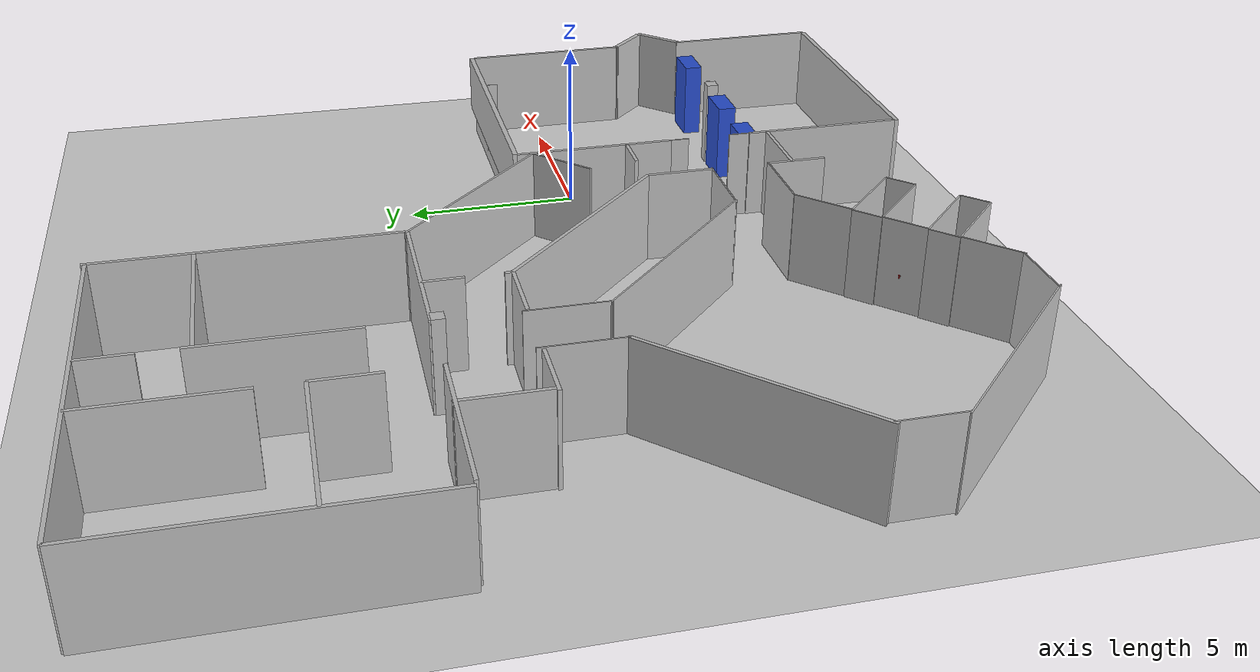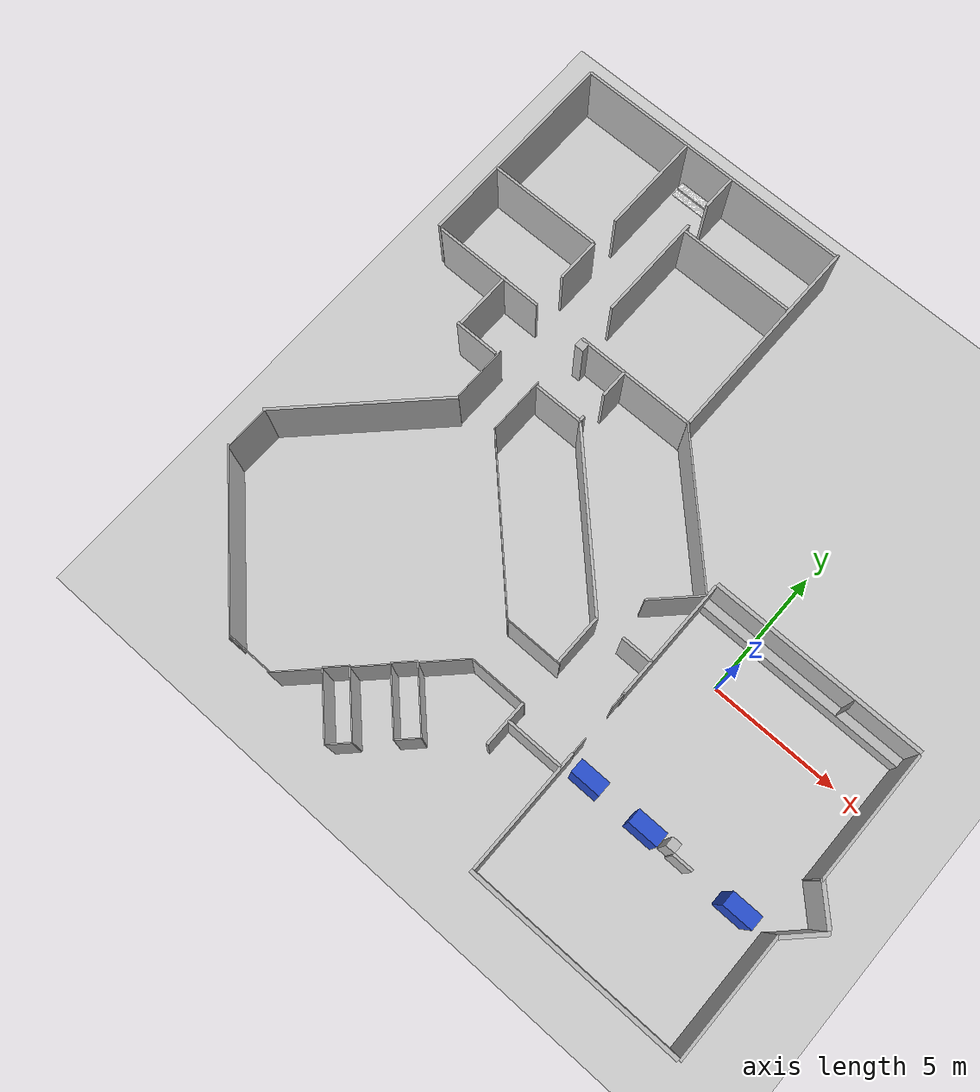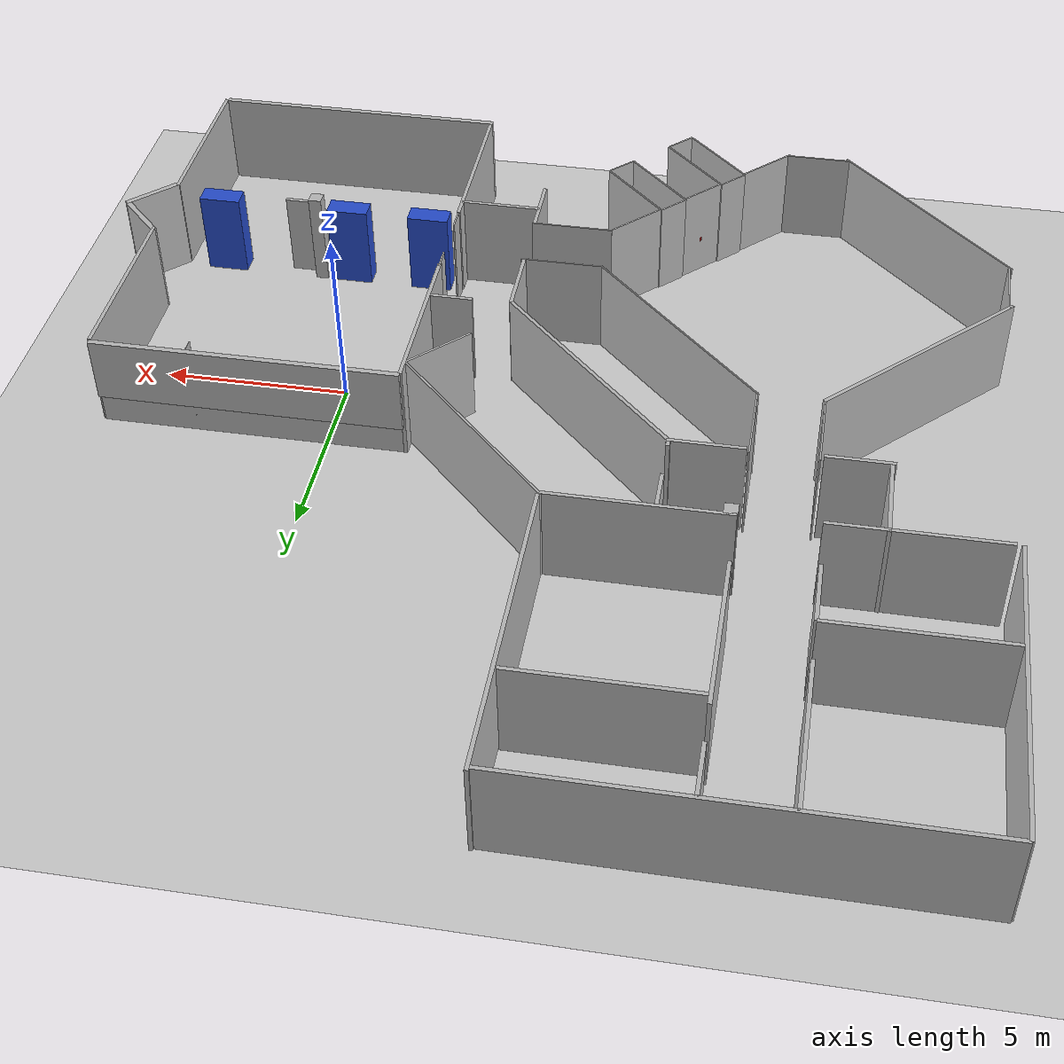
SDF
<sdf version="1.6">
 <world name="default">
  <light name="sun" type="directional">
   <pose>0 0 10 0 -0 0</pose>
   <diffuse>0.8 0.8 0.8 1</diffuse>
   <specular>0.2 0.2 0.2 1</specular>
   <attenuation>
    <range>1000</range>
    <constant>0.9</constant>
    <linear>0.01</linear>
    <quadratic>0.001</quadratic>
   </attenuation>
   <direction>-0.5 0.1 -0.9</direction>
  </light>
  <model name="ground_plane">
   <static>1</static>
   <link name="link">
    <collision name="collision">
     <geometry><plane><normal>0 0 1</normal><size>100 100</size></plane></geometry>
     <surface>
      <contact><collide_bitmask>65535</collide_bitmask></contact>
      <friction><ode><mu>100</mu><mu2>50</mu2></ode></friction>
     </surface>
    </collision>
    <visual name="visual">
     <cast_shadows>0</cast_shadows>
     <geometry><plane><normal>0 0 1</normal><size>100 100</size></plane></geometry>
     <material>
      <script><uri>file://media/materials/scripts/gazebo.material</uri><name>Gazebo/Grey</name></script>
     </material>
    </visual>
   </link>
  </model>
  <gravity>0 0 -9.8</gravity>
  <magnetic_field>6e-06 2.3e-05 -4.2e-05</magnetic_field>
  <atmosphere type="adiabatic"/>
  <physics name="default_physics" default="0" type="ode">
   <max_step_size>0.001</max_step_size>
   <real_time_factor>1</real_time_factor>
   <real_time_update_rate>1000</real_time_update_rate>
  </physics>
  <scene><ambient>0.4 0.4 0.4 1</ambient><background>0.7 0.7 0.7 1</background><shadows>1</shadows></scene>
  <audio><device>default</device></audio>
  <spherical_coordinates>
   <surface_model>EARTH_WGS84</surface_model>
   <latitude_deg>0</latitude_deg>
   <longitude_deg>0</longitude_deg>
   <elevation>0</elevation>
   <heading_deg>0</heading_deg>
  </spherical_coordinates>
  <model name="ipa-apartment">
   <link name="cabinet1">
    <pose>4.844 -5.245 1.2 0 -0 0</pose>
    <inertial>
     <mass>5</mass>
     <inertia><ixx>2.52604</ixx><ixy>0</ixy><ixz>0</ixz><iyy>2.95104</iyy><iyz>0</iyz><izz>0.677083</izz></inertia>
    </inertial>
    <collision name="cabinet1_collision"><geometry><box><size>1.15 0.55 2.4</size></box></geometry></collision>
    <visual name="cabinet1_visual">
     <geometry><box><size>1.15 0.55 2.4</size></box></geometry>
     <material>
      <script><name>IPA/CabinetBlue</name><uri>file://media/materials/scripts/gazebo.material</uri></script>
     </material>
    </visual>
   </link>
   <joint name="joint_cabinet1" type="fixed"><child>cabinet1</child><parent>world</parent></joint>
   <link name="cabinet2">
    <pose>1.104 -5.245 1.2 0 -0 0</pose>
    <inertial>
     <mass>5</mass>
     <inertia><ixx>2.52604</ixx><ixy>0</ixy><ixz>0</ixz><iyy>2.95104</iyy><iyz>0</iyz><izz>0.677083</izz></inertia>
    </inertial>
    <collision name="cabinet2_collision"><geometry><box><size>1.15 0.55 2.4</size></box></geometry></collision>
    <visual name="cabinet2_visual">
     <geometry><box><size>1.15 0.55 2.4</size></box></geometry>
     <material>
      <script><name>IPA/CabinetBlue</name><uri>file://media/materials/scripts/gazebo.material</uri></script>
     </material>
    </visual>
   </link>
   <joint name="joint_cabinet2" type="fixed"><child>cabinet2</child><parent>world</parent></joint>
   <link name="cabinet3">
    <pose>-1.236 -5.245 1.2 0 -0 0</pose>
    <inertial>
     <mass>5</mass>
     <inertia><ixx>2.52604</ixx><ixy>0</ixy><ixz>0</ixz><iyy>2.95104</iyy><iyz>0</iyz><izz>0.677083</izz></inertia>
    </inertial>
    <collision name="cabinet3_collision"><geometry><box><size>1.15 0.55 2.4</size></box></geometry></collision>
    <visual name="cabinet3_visual">
     <geometry><box><size>1.15 0.55 2.4</size></box></geometry>
     <material>
      <script><name>IPA/CabinetBlue</name><uri>file://media/materials/scripts/gazebo.material</uri></script>
     </material>
    </visual>
   </link>
   <joint name="joint_cabinet3" type="fixed"><child>cabinet3</child><parent>world</parent></joint>
   <link name="column">
    <pose>2.009 -5.15 1.35 0 -0 0</pose>
    <inertial>
     <mass>5</mass>
     <inertia><ixx>3.0915</ixx><ixy>0</ixy><ixz>0</ixz><iyy>3.0915</iyy><iyz>0</iyz><izz>0.108</izz></inertia>
    </inertial>
    <collision name="column_collision"><geometry><box><size>0.36 0.36 2.7</size></box></geometry></collision>
    <visual name="column_visual">
     <geometry><box><size>0.36 0.36 2.7</size></box></geometry>
     <material>
      <script><name>IPA/WallApartment</name><uri>file://media/materials/scripts/gazebo.material</uri></script>
     </material>
    </visual>
   </link>
   <joint name="joint_column" type="fixed"><child>column</child><parent>world</parent></joint>
   <link name="door_00">
    <pose>-2.131 -2.85 1.35 0 -0 0</pose>
    <inertial>
     <mass>5</mass>
     <inertia><ixx>3.19767</ixx><ixy>0</ixy><ixz>0</ixz><iyy>3.03817</iyy><iyz>0</iyz><izz>0.160833</izz></inertia>
    </inertial>
    <collision name="door_00_collision"><geometry><box><size>0.04 0.62 2.7</size></box></geometry></collision>
    <visual name="door_00_visual">
     <geometry><box><size>0.04 0.62 2.7</size></box></geometry>
     <material>
      <script><name>IPA/Wall2</name><uri>file://media/materials/scripts/gazebo.material</uri></script>
     </material>
    </visual>
   </link>
   <joint name="joint_door_00" type="fixed"><child>door_00</child><parent>world</parent></joint>
   <link name="door_01">
    <pose>-2.131 -4.75 1.35 0 -0 0</pose>
    <inertial>
     <mass>5</mass>
     <inertia><ixx>3.19767</ixx><ixy>0</ixy><ixz>0</ixz><iyy>3.03817</iyy><iyz>0</iyz><izz>0.160833</izz></inertia>
    </inertial>
    <collision name="door_01_collision"><geometry><box><size>0.04 0.62 2.7</size></box></geometry></collision>
    <visual name="door_01_visual">
     <geometry><box><size>0.04 0.62 2.7</size></box></geometry>
     <material>
      <script><name>IPA/Wall2</name><uri>file://media/materials/scripts/gazebo.material</uri></script>
     </material>
    </visual>
   </link>
   <joint name="joint_door_01" type="fixed"><child>door_01</child><parent>world</parent></joint>
   <link name="origin_landing">
    <pose>-11.931 -4.07 0 0 -0 0</pose>
    <inertial>
     <pose>2.29172 5.0105 1.32685 0 -0 0</pose>
     <mass>215.03</mass>
     <inertia>
      <ixx>11620.1</ixx>
      <ixy>2165.63</ixy>
      <ixz>-11.4059</ixz>
      <iyy>3555.04</iyy>
      <iyz>62.6193</iyz>
      <izz>14910.3</izz>
     </inertia>
    </inertial>
    <collision name="origin_landing_fixed_joint_lump__door_E334_collision">
     <pose>8.7 -1.565 1.35 0 -0 0</pose>
     <geometry><box><size>2.2 0.1 2.7</size></box></geometry>
    </collision>
    <collision name="origin_landing_fixed_joint_lump__elevator_left2_collision_1">
     <pose>5.61427 -4.07985 1.35 0 0 -0.785398</pose>
     <geometry><box><size>0.04 0.87 2.7</size></box></geometry>
    </collision>
    <collision name="origin_landing_fixed_joint_lump__elevator_right2_collision_2">
     <pose>4.07985 -5.61427 1.35 0 0 -0.785398</pose>
     <geometry><box><size>0.04 0.87 2.7</size></box></geometry>
    </collision>
    <collision name="origin_landing_fixed_joint_lump__wall_elv5_collision_3">
     <pose>5.07333 -2.92373 1.35 0 0 -0.785398</pose>
     <geometry><box><size>2.4 0.04 2.7</size></box></geometry>
    </collision>
    <collision name="origin_landing_fixed_joint_lump__wall_elv6_collision_4">
     <pose>4.45815 -3.53891 1.35 0 0 -0.785398</pose>
     <geometry><box><size>2.4 0.04 2.7</size></box></geometry>
    </collision>
    <collision name="origin_landing_fixed_joint_lump__wall_elv7_collision_5">
     <pose>3.53891 -4.45815 1.35 0 0 -0.785398</pose>
     <geometry><box><size>2.4 0.04 2.7</size></box></geometry>
    </collision>
    <collision name="origin_landing_fixed_joint_lump__wall_elv8_collision_6">
     <pose>2.92373 -5.07333 1.35 0 0 -0.785398</pose>
     <geometry><box><size>2.4 0.04 2.7</size></box></geometry>
    </collision>
    <collision name="origin_landing_fixed_joint_lump__wall_ext18_collision_7">
     <pose>4.83999 -1.46001 1.35 0 0 -0.785398</pose>
     <geometry><box><size>0.04 1.74 2.7</size></box></geometry>
    </collision>
    <collision name="origin_landing_fixed_joint_lump__wall_ext19_collision_8">
     <pose>1.46001 -4.83999 1.35 0 0 -0.785398</pose>
     <geometry><box><size>0.04 1.74 2.7</size></box></geometry>
    </collision>
    <collision name="origin_landing_fixed_joint_lump__wall_ext20_collision_9">
     <pose>3.15 -3.15 1.35 0 0 -0.785398</pose>
     <geometry><box><size>0.04 1.3 2.7</size></box></geometry>
    </collision>
    <collision name="origin_landing_fixed_joint_lump__boards_before_bedroom_link_collision_10">
     <pose>0 17.65 0.36 0 -0 0</pose>
     <geometry><box><size>1.8 0.55 0.22</size></box></geometry>
    </collision>
    <collision name="origin_landing_fixed_joint_lump__wall_office_00_collision_11">
     <pose>3.25 9.85 1.35 0 -0 0</pose>
     <geometry><box><size>4.65 0.1 2.7</size></box></geometry>
    </collision>
    <collision name="origin_landing_fixed_joint_lump__wall_office_01_collision_12">
     <pose>-3.25 9.78 1.35 0 -0 0</pose>
     <geometry><box><size>4.4 0.1 2.7</size></box></geometry>
    </collision>
    <collision name="origin_landing_fixed_joint_lump__wall_office_02_collision_13">
     <pose>5.6 14 1.35 0 -0 0</pose>
     <geometry><box><size>0.1 8.2 2.7</size></box></geometry>
    </collision>
    <collision name="origin_landing_fixed_joint_lump__wall_office_03_collision_14">
     <pose>-5.6 13.9 1.35 0 -0 0</pose>
     <geometry><box><size>0.1 8.2 2.7</size></box></geometry>
    </collision>
    <collision name="origin_landing_fixed_joint_lump__wall_office_04_collision_15">
     <pose>0 18 1.35 0 -0 0</pose>
     <geometry><box><size>11.2 0.1 2.7</size></box></geometry>
    </collision>
    <collision name="origin_landing_fixed_joint_lump__wall_office_05_collision_16">
     <pose>0.95 13.48 1.35 0 -0 0</pose>
     <geometry><box><size>0.1 4.21 2.7</size></box></geometry>
    </collision>
    <collision name="origin_landing_fixed_joint_lump__wall_office_06_collision_17">
     <pose>0.95 17.28 1.35 0 -0 0</pose>
     <geometry><box><size>0.1 1.4 2.7</size></box></geometry>
    </collision>
    <collision name="origin_landing_fixed_joint_lump__wall_office_07_collision_18">
     <pose>-1.09 16 1.35 0 -0 0</pose>
     <geometry><box><size>0.1 4.01 2.7</size></box></geometry>
    </collision>
    <collision name="origin_landing_fixed_joint_lump__wall_office_08_collision_19">
     <pose>-1.09 12 1.35 0 -0 0</pose>
     <geometry><box><size>0.1 1.73 2.7</size></box></geometry>
    </collision>
    <collision name="origin_landing_fixed_joint_lump__wall_office_09_collision_20">
     <pose>3.26 15.32 1.35 0 -0 0</pose>
     <geometry><box><size>4.53 0.1 2.7</size></box></geometry>
    </collision>
    <collision name="origin_landing_fixed_joint_lump__wall_office_10_collision_21">
     <pose>-3.35 12.86 1.35 0 -0 0</pose>
     <geometry><box><size>4.5 0.1 2.7</size></box></geometry>
    </collision>
    <collision name="origin_landing_fixed_joint_lump__pillar_ext01_collision_22">
     <pose>1.08 9.675 1.35 0 -0 0</pose>
     <geometry><box><size>0.35 0.35 2.7</size></box></geometry>
    </collision>
    <collision name="origin_landing_fixed_joint_lump__wall_ext10_collision_23">
     <pose>1.89 7.53 1.35 0 -0 0</pose>
     <geometry><box><size>1.96 0.1 2.7</size></box></geometry>
    </collision>
    <collision name="origin_landing_fixed_joint_lump__wall_ext11_collision_24">
     <pose>-0.85 6.55 1.35 0 -0 0</pose>
     <geometry><box><size>0.04 2.24 2.7</size></box></geometry>
    </collision>
    <collision name="origin_landing_fixed_joint_lump__wall_ext12_collision_25">
     <pose>0.85 6.55 1.35 0 -0 0</pose>
     <geometry><box><size>0.04 2.24 2.7</size></box></geometry>
    </collision>
    <collision name="origin_landing_fixed_joint_lump__wall_ext13_collision_26">
     <pose>3.15 3.15 1.35 0 -0 0.7854</pose>
     <geometry><box><size>0.04 6.6 2.7</size></box></geometry>
    </collision>
    <collision name="origin_landing_fixed_joint_lump__wall_ext14_collision_27">
     <pose>-3.15 3.15 1.35 0 0 -0.7854</pose>
     <geometry><box><size>0.1 6.6 2.7</size></box></geometry>
    </collision>
    <collision name="origin_landing_fixed_joint_lump__wall_ext15_collision_28">
     <pose>-3.15 -3.15 1.35 0 -0 0.7854</pose>
     <geometry><box><size>0.04 6.6 2.7</size></box></geometry>
    </collision>
    <collision name="origin_landing_fixed_joint_lump__wall_ext16_collision_29">
     <pose>-5.4 0 1.35 0 -0 0</pose>
     <geometry><box><size>0.04 1.8 2.7</size></box></geometry>
    </collision>
    <collision name="origin_landing_fixed_joint_lump__wall_ext17_collision_30">
     <pose>0 -5.4 1.35 0 -0 0</pose>
     <geometry><box><size>1.8 0.04 2.7</size></box></geometry>
    </collision>
    <collision name="origin_landing_fixed_joint_lump__wall_ext21_collision_31">
     <pose>5.2 5.15 1.35 0 -0 0.7854</pose>
     <geometry><box><size>0.1 6.75 2.7</size></box></geometry>
    </collision>
    <collision name="origin_landing_fixed_joint_lump__wall_ext22_collision_32">
     <pose>7.65 7.79 1.35 0 -0 0.7854</pose>
     <geometry><box><size>0.06 6 2.7</size></box></geometry>
    </collision>
    <collision name="origin_landing_fixed_joint_lump__wall_ext23_collision_33">
     <pose>9.22 2.83 1.35 0 -0 0</pose>
     <geometry><box><size>1.2 0.1 2.7</size></box></geometry>
    </collision>
    <collision name="origin_landing_fixed_joint_lump__wall_ext24_collision_34">
     <pose>9.058 4.958 1.35 0 -0 0.7854</pose>
     <geometry><box><size>1.99 0.06 2.7</size></box></geometry>
    </collision>
    <collision name="origin_landing_fixed_joint_lump__wall_ext25_collision_35">
     <pose>2.81 9.3 1.35 0 -0 0</pose>
     <geometry><box><size>0.1 1.1 2.7</size></box></geometry>
    </collision>
    <collision name="origin_landing_fixed_joint_lump__wall_ext26_collision_36">
     <pose>2.81 7.63 1.35 0 -0 0</pose>
     <geometry><box><size>0.1 0.23 2.7</size></box></geometry>
    </collision>
    <collision name="origin_landing_fixed_joint_lump__wall_ext3_collision_37">
     <pose>7.6 -1.7 1.35 0 -0 0</pose>
     <geometry><box><size>0.1 1.73 2.7</size></box></geometry>
    </collision>
    <collision name="origin_landing_fixed_joint_lump__wall_ext4_collision_38">
     <pose>7.58 1.83 1.35 0 -0 0</pose>
     <geometry><box><size>0.1 1.93 2.7</size></box></geometry>
    </collision>
    <collision name="origin_landing_fixed_joint_lump__wall_ext5_collision_39">
     <pose>6.55 -0.85 1.35 0 -0 0</pose>
     <geometry><box><size>2.24 0.04 2.7</size></box></geometry>
    </collision>
    <collision name="origin_landing_fixed_joint_lump__wall_ext6_collision_40">
     <pose>6.55 0.85 1.35 0 -0 0</pose>
     <geometry><box><size>2.24 0.04 2.7</size></box></geometry>
    </collision>
    <collision name="origin_landing_fixed_joint_lump__wall_ext8_collision_41">
     <pose>-2.565 8.7 1.35 0 -0 0</pose>
     <geometry><box><size>0.1 2.3 2.7</size></box></geometry>
    </collision>
    <collision name="origin_landing_fixed_joint_lump__wall_ext9_collision_42">
     <pose>-1.8 7.5 1.35 0 -0 0</pose>
     <geometry><box><size>1.73 0.1 2.7</size></box></geometry>
    </collision>
    <visual name="origin_landing_fixed_joint_lump__door_E334_visual">
     <pose>8.7 -1.565 1.35 0 -0 0</pose>
     <geometry><box><size>2.2 0.1 2.7</size></box></geometry>
     <material>
      <script><name>door_E334</name><uri>file://media/materials/scripts/gazebo.material</uri></script>
     </material>
    </visual>
    <visual name="origin_landing_fixed_joint_lump__elevator_left2_visual_1">
     <pose>5.61427 -4.07985 1.35 0 0 -0.785398</pose>
     <geometry><box><size>0.04 0.87 2.7</size></box></geometry>
     <material>
      <script><name>wall_floor_07</name><uri>file://media/materials/scripts/gazebo.material</uri></script>
     </material>
    </visual>
    <visual name="origin_landing_fixed_joint_lump__elevator_right2_visual_2">
     <pose>4.07985 -5.61427 1.35 0 0 -0.785398</pose>
     <geometry><box><size>0.04 0.87 2.7</size></box></geometry>
     <material>
      <script><name>wall_floor_07</name><uri>file://media/materials/scripts/gazebo.material</uri></script>
     </material>
    </visual>
    <visual name="origin_landing_fixed_joint_lump__wall_elv5_visual_3">
     <pose>5.07333 -2.92373 1.35 0 0 -0.785398</pose>
     <geometry><box><size>2.4 0.04 2.7</size></box></geometry>
     <material>
      <script><name>wall_floor_07</name><uri>file://media/materials/scripts/gazebo.material</uri></script>
     </material>
    </visual>
    <visual name="origin_landing_fixed_joint_lump__wall_elv6_visual_4">
     <pose>4.45815 -3.53891 1.35 0 0 -0.785398</pose>
     <geometry><box><size>2.4 0.04 2.7</size></box></geometry>
     <material>
      <script><name>wall_floor_07</name><uri>file://media/materials/scripts/gazebo.material</uri></script>
     </material>
    </visual>
    <visual name="origin_landing_fixed_joint_lump__wall_elv7_visual_5">
     <pose>3.53891 -4.45815 1.35 0 0 -0.785398</pose>
     <geometry><box><size>2.4 0.04 2.7</size></box></geometry>
     <material>
      <script><name>wall_floor_07</name><uri>file://media/materials/scripts/gazebo.material</uri></script>
     </material>
    </visual>
    <visual name="origin_landing_fixed_joint_lump__wall_elv8_visual_6">
     <pose>2.92373 -5.07333 1.35 0 0 -0.785398</pose>
     <geometry><box><size>2.4 0.04 2.7</size></box></geometry>
     <material>
      <script><name>wall_floor_07</name><uri>file://media/materials/scripts/gazebo.material</uri></script>
     </material>
    </visual>
    <visual name="origin_landing_fixed_joint_lump__wall_ext18_visual_7">
     <pose>4.83999 -1.46001 1.35 0 0 -0.785398</pose>
     <geometry><box><size>0.04 1.74 2.7</size></box></geometry>
     <material>
      <script><name>wall_floor_07</name><uri>file://media/materials/scripts/gazebo.material</uri></script>
     </material>
    </visual>
    <visual name="origin_landing_fixed_joint_lump__wall_ext19_visual_8">
     <pose>1.46001 -4.83999 1.35 0 0 -0.785398</pose>
     <geometry><box><size>0.04 1.74 2.7</size></box></geometry>
     <material>
      <script><name>wall_floor_07</name><uri>file://media/materials/scripts/gazebo.material</uri></script>
     </material>
    </visual>
    <visual name="origin_landing_fixed_joint_lump__wall_ext20_visual_9">
     <pose>3.15 -3.15 1.35 0 0 -0.785398</pose>
     <geometry><box><size>0.04 1.3 2.7</size></box></geometry>
     <material>
      <script><name>wall_floor_07</name><uri>file://media/materials/scripts/gazebo.material</uri></script>
     </material>
    </visual>
    <visual name="origin_landing_fixed_joint_lump__boards_before_bedroom_link_visual_10">
     <pose>0 17.62 0.25 0 -0 0</pose>
     <geometry>
      <mesh>
       <scale>1 1 1</scale>
       <uri>/opt/ros/melodic/share/cob_gazebo_worlds/Media/models/boards_before_bedroom.dae</uri>
      </mesh>
     </geometry>
    </visual>
    <visual name="origin_landing_fixed_joint_lump__wall_office_00_visual_11">
     <pose>3.25 9.85 1.35 0 -0 0</pose>
     <geometry><box><size>4.65 0.1 2.7</size></box></geometry>
     <material>
      <script><name>wall_floor_05</name><uri>file://media/materials/scripts/gazebo.material</uri></script>
     </material>
    </visual>
    <visual name="origin_landing_fixed_joint_lump__wall_office_01_visual_12">
     <pose>-3.25 9.78 1.35 0 -0 0</pose>
     <geometry><box><size>4.4 0.1 2.7</size></box></geometry>
     <material>
      <script><name>wall_floor_11</name><uri>file://media/materials/scripts/gazebo.material</uri></script>
     </material>
    </visual>
    <visual name="origin_landing_fixed_joint_lump__wall_office_02_visual_13">
     <pose>5.6 14 1.35 0 -0 0</pose>
     <geometry><box><size>0.1 8.2 2.7</size></box></geometry>
     <material>
      <script><name>wall_livingroom1</name><uri>file://media/materials/scripts/gazebo.material</uri></script>
     </material>
    </visual>
    <visual name="origin_landing_fixed_joint_lump__wall_office_03_visual_14">
     <pose>-5.6 13.9 1.35 0 -0 0</pose>
     <geometry><box><size>0.1 8.2 2.7</size></box></geometry>
     <material>
      <script><name>wall_livingroom1</name><uri>file://media/materials/scripts/gazebo.material</uri></script>
     </material>
    </visual>
    <visual name="origin_landing_fixed_joint_lump__wall_office_04_visual_15">
     <pose>0 18 1.35 0 -0 0</pose>
     <geometry><box><size>11.2 0.1 2.7</size></box></geometry>
     <material>
      <script><name>wall_livingroom1</name><uri>file://media/materials/scripts/gazebo.material</uri></script>
     </material>
    </visual>
    <visual name="origin_landing_fixed_joint_lump__wall_office_05_visual_16">
     <pose>0.95 13.48 1.35 0 -0 0</pose>
     <geometry><box><size>0.1 4.21 2.7</size></box></geometry>
     <material>
      <script><name>wall_floor_05</name><uri>file://media/materials/scripts/gazebo.material</uri></script>
     </material>
    </visual>
    <visual name="origin_landing_fixed_joint_lump__wall_office_06_visual_17">
     <pose>0.95 17.28 1.35 0 -0 0</pose>
     <geometry><box><size>0.1 1.4 2.7</size></box></geometry>
     <material>
      <script><name>wall_floor_06</name><uri>file://media/materials/scripts/gazebo.material</uri></script>
     </material>
    </visual>
    <visual name="origin_landing_fixed_joint_lump__wall_office_07_visual_18">
     <pose>-1.09 16 1.35 0 -0 0</pose>
     <geometry><box><size>0.1 4.01 2.7</size></box></geometry>
     <material>
      <script><name>wall_floor_07</name><uri>file://media/materials/scripts/gazebo.material</uri></script>
     </material>
    </visual>
    <visual name="origin_landing_fixed_joint_lump__wall_office_08_visual_19">
     <pose>-1.09 12 1.35 0 -0 0</pose>
     <geometry><box><size>0.1 1.73 2.7</size></box></geometry>
     <material>
      <script><name>wall_floor_08</name><uri>file://media/materials/scripts/gazebo.material</uri></script>
     </material>
    </visual>
    <visual name="origin_landing_fixed_joint_lump__wall_office_09_visual_20">
     <pose>3.26 15.32 1.35 0 -0 0</pose>
     <geometry><box><size>4.53 0.1 2.7</size></box></geometry>
     <material>
      <script><name>wall_bedroom1</name><uri>file://media/materials/scripts/gazebo.material</uri></script>
     </material>
    </visual>
    <visual name="origin_landing_fixed_joint_lump__wall_office_10_visual_21">
     <pose>-3.35 12.86 1.35 0 -0 0</pose>
     <geometry><box><size>4.5 0.1 2.7</size></box></geometry>
     <material>
      <script><name>wall_bedroom1</name><uri>file://media/materials/scripts/gazebo.material</uri></script>
     </material>
    </visual>
    <visual name="origin_landing_fixed_joint_lump__pillar_ext01_visual_22">
     <pose>1.08 9.675 1.35 0 -0 0</pose>
     <geometry><box><size>0.35 0.35 2.7</size></box></geometry>
     <material>
      <script><name>wall_floor_12</name><uri>file://media/materials/scripts/gazebo.material</uri></script>
     </material>
    </visual>
    <visual name="origin_landing_fixed_joint_lump__wall_ext10_visual_23">
     <pose>1.89 7.53 1.35 0 -0 0</pose>
     <geometry><box><size>1.96 0.1 2.7</size></box></geometry>
     <material>
      <script><name>wall_floor_07</name><uri>file://media/materials/scripts/gazebo.material</uri></script>
     </material>
    </visual>
    <visual name="origin_landing_fixed_joint_lump__wall_ext11_visual_24">
     <pose>-0.85 6.55 1.35 0 -0 0</pose>
     <geometry><box><size>0.04 2.24 2.7</size></box></geometry>
     <material>
      <script><name>door_women_toilet</name><uri>file://media/materials/scripts/gazebo.material</uri></script>
     </material>
    </visual>
    <visual name="origin_landing_fixed_joint_lump__wall_ext12_visual_25">
     <pose>0.85 6.55 1.35 0 -0 0</pose>
     <geometry><box><size>0.04 2.24 2.7</size></box></geometry>
     <material>
      <script><name>door_E322</name><uri>file://media/materials/scripts/gazebo.material</uri></script>
     </material>
    </visual>
    <visual name="origin_landing_fixed_joint_lump__wall_ext13_visual_26">
     <pose>3.15 3.15 1.35 0 -0 0.7854</pose>
     <geometry><box><size>0.04 6.6 2.7</size></box></geometry>
     <material>
      <script><name>wall_floor_07</name><uri>file://media/materials/scripts/gazebo.material</uri></script>
     </material>
    </visual>
    <visual name="origin_landing_fixed_joint_lump__wall_ext14_visual_27">
     <pose>-3.15 3.15 1.35 0 0 -0.7854</pose>
     <geometry><box><size>0.1 6.6 2.7</size></box></geometry>
     <material>
      <script><name>wall_floor_07</name><uri>file://media/materials/scripts/gazebo.material</uri></script>
     </material>
    </visual>
    <visual name="origin_landing_fixed_joint_lump__wall_ext15_visual_28">
     <pose>-3.15 -3.15 1.35 0 -0 0.7854</pose>
     <geometry><box><size>0.04 6.6 2.7</size></box></geometry>
     <material>
      <script><name>wall_floor_07</name><uri>file://media/materials/scripts/gazebo.material</uri></script>
     </material>
    </visual>
    <visual name="origin_landing_fixed_joint_lump__wall_ext16_visual_29">
     <pose>-5.4 0 1.35 0 -0 0</pose>
     <geometry><box><size>0.04 1.8 2.7</size></box></geometry>
     <material>
      <script><name>wall_floor_07</name><uri>file://media/materials/scripts/gazebo.material</uri></script>
     </material>
    </visual>
    <visual name="origin_landing_fixed_joint_lump__wall_ext17_visual_30">
     <pose>0 -5.4 1.35 0 -0 0</pose>
     <geometry><box><size>1.8 0.04 2.7</size></box></geometry>
     <material>
      <script><name>wall_floor_07</name><uri>file://media/materials/scripts/gazebo.material</uri></script>
     </material>
    </visual>
    <visual name="origin_landing_fixed_joint_lump__wall_ext21_visual_31">
     <pose>5.2 5.15 1.35 0 -0 0.7854</pose>
     <geometry><box><size>0.1 6.75 2.7</size></box></geometry>
     <material>
      <script><name>wall_livingroom2</name><uri>file://media/materials/scripts/gazebo.material</uri></script>
     </material>
    </visual>
    <visual name="origin_landing_fixed_joint_lump__wall_ext22_visual_32">
     <pose>7.65 7.79 1.35 0 -0 0.7854</pose>
     <geometry><box><size>0.06 6 2.7</size></box></geometry>
     <material>
      <script><name>wall_livingroom1</name><uri>file://media/materials/scripts/gazebo.material</uri></script>
     </material>
    </visual>
    <visual name="origin_landing_fixed_joint_lump__wall_ext23_visual_33">
     <pose>9.22 2.83 1.35 0 -0 0</pose>
     <geometry><box><size>1.2 0.1 2.7</size></box></geometry>
     <material>
      <script><name>wall_floor_06</name><uri>file://media/materials/scripts/gazebo.material</uri></script>
     </material>
    </visual>
    <visual name="origin_landing_fixed_joint_lump__wall_ext24_visual_34">
     <pose>9.058 4.958 1.35 0 -0 0.7854</pose>
     <geometry><box><size>1.99 0.06 2.7</size></box></geometry>
     <material>
      <script><name>livingroom_slidingdoor</name><uri>file://media/materials/scripts/gazebo.material</uri></script>
     </material>
    </visual>
    <visual name="origin_landing_fixed_joint_lump__wall_ext25_visual_35">
     <pose>2.81 9.3 1.35 0 -0 0</pose>
     <geometry><box><size>0.1 1.1 2.7</size></box></geometry>
     <material>
      <script><name>wall_floor_06</name><uri>file://media/materials/scripts/gazebo.material</uri></script>
     </material>
    </visual>
    <visual name="origin_landing_fixed_joint_lump__wall_ext26_visual_36">
     <pose>2.81 7.63 1.35 0 -0 0</pose>
     <geometry><box><size>0.1 0.23 2.7</size></box></geometry>
     <material>
      <script><name>wall_floor_08</name><uri>file://media/materials/scripts/gazebo.material</uri></script>
     </material>
    </visual>
    <visual name="origin_landing_fixed_joint_lump__wall_ext3_visual_37">
     <pose>7.6 -1.7 1.35 0 -0 0</pose>
     <geometry><box><size>0.1 1.73 2.7</size></box></geometry>
     <material>
      <script><name>wall_floor_07</name><uri>file://media/materials/scripts/gazebo.material</uri></script>
     </material>
    </visual>
    <visual name="origin_landing_fixed_joint_lump__wall_ext4_visual_38">
     <pose>7.58 1.83 1.35 0 -0 0</pose>
     <geometry><box><size>0.1 1.93 2.7</size></box></geometry>
     <material>
      <script><name>wall_floor_07</name><uri>file://media/materials/scripts/gazebo.material</uri></script>
     </material>
    </visual>
    <visual name="origin_landing_fixed_joint_lump__wall_ext5_visual_39">
     <pose>6.55 -0.85 1.35 0 -0 0</pose>
     <geometry><box><size>2.24 0.04 2.7</size></box></geometry>
     <material>
      <script>
       <name>door_opposite_of_men_toilet</name>
       <uri>file://media/materials/scripts/gazebo.material</uri>
      </script>
     </material>
    </visual>
    <visual name="origin_landing_fixed_joint_lump__wall_ext6_visual_40">
     <pose>6.55 0.85 1.35 0 -0 0</pose>
     <geometry><box><size>2.24 0.04 2.7</size></box></geometry>
     <material>
      <script><name>door_toilet_men</name><uri>file://media/materials/scripts/gazebo.material</uri></script>
     </material>
    </visual>
    <visual name="origin_landing_fixed_joint_lump__wall_ext8_visual_41">
     <pose>-2.565 8.7 1.35 0 -0 0</pose>
     <geometry><box><size>0.1 2.3 2.7</size></box></geometry>
     <material>
      <script><name>wall_floor_05</name><uri>file://media/materials/scripts/gazebo.material</uri></script>
     </material>
    </visual>
    <visual name="origin_landing_fixed_joint_lump__wall_ext9_visual_42">
     <pose>-1.8 7.5 1.35 0 -0 0</pose>
     <geometry><box><size>1.73 0.1 2.7</size></box></geometry>
     <material>
      <script><name>wall_floor_07</name><uri>file://media/materials/scripts/gazebo.material</uri></script>
     </material>
    </visual>
   </link>
   <joint name="joint_origin_landing" type="fixed"><child>origin_landing</child><parent>world</parent></joint>
   <link name="elevator_button1">
    <pose>-8.80928 -7.19172 1.035 0 0 -0.785398</pose>
    <inertial>
     <mass>0.01</mass>
     <inertia><ixx>0.001</ixx><ixy>0</ixy><ixz>0</ixz><iyy>0.001</iyy><iyz>0</iyz><izz>0.001</izz></inertia>
    </inertial>
    <collision name="elevator_button1_collision">
     <geometry><box><size>0.01 0.05 0.05</size></box></geometry>
    </collision>
    <visual name="elevator_button1_visual">
     <geometry><box><size>0.01 0.05 0.05</size></box></geometry>
     <material>
      <script><name>Gazebo/Red</name><uri>file://media/materials/scripts/gazebo.material</uri></script>
     </material>
    </visual>
    <sensor name="elevator_button1_contact_sensor" type="contact">
     <always_on>1</always_on>
     <update_rate>10</update_rate>
     <contact><collision>elevator_button1_collision</collision><topic>elevator_button1_bumper</topic></contact>
     <plugin name="elevator_button1_gazebo_ros_bumper_controller" filename="libgazebo_ros_bumper.so">
      <frameName>elevator_button1</frameName>
      <bumperTopicName>elevator_button1_bumper</bumperTopicName>
      <robotNamespace>/</robotNamespace>
     </plugin>
    </sensor>
   </link>
   <joint name="elevator_button1_joint" type="prismatic">
    <child>elevator_button1</child>
    <parent>origin_landing</parent>
    <axis>
     <xyz>-0.707107 0.707107 0</xyz>
     <limit><lower>0</lower><upper>0.005</upper><effort>1</effort><velocity>1</velocity></limit>
     <dynamics><spring_reference>0</spring_reference><spring_stiffness>0</spring_stiffness></dynamics>
     <use_parent_model_frame>1</use_parent_model_frame>
    </axis>
   </joint>
   <link name="elevator_button2">
    <pose>-8.80928 -7.19172 1.095 0 0 -0.785398</pose>
    <inertial>
     <mass>0.01</mass>
     <inertia><ixx>0.001</ixx><ixy>0</ixy><ixz>0</ixz><iyy>0.001</iyy><iyz>0</iyz><izz>0.001</izz></inertia>
    </inertial>
    <collision name="elevator_button2_collision">
     <geometry><box><size>0.01 0.05 0.05</size></box></geometry>
    </collision>
    <visual name="elevator_button2_visual">
     <geometry><box><size>0.01 0.05 0.05</size></box></geometry>
     <material>
      <script><name>Gazebo/Red</name><uri>file://media/materials/scripts/gazebo.material</uri></script>
     </material>
    </visual>
    <sensor name="elevator_button2_contact_sensor" type="contact">
     <always_on>1</always_on>
     <update_rate>10</update_rate>
     <contact><collision>elevator_button2_collision</collision><topic>elevator_button2_bumper</topic></contact>
     <plugin name="elevator_button2_gazebo_ros_bumper_controller" filename="libgazebo_ros_bumper.so">
      <frameName>elevator_button2</frameName>
      <bumperTopicName>elevator_button2_bumper</bumperTopicName>
      <robotNamespace>/</robotNamespace>
     </plugin>
    </sensor>
   </link>
   <joint name="elevator_button2_joint" type="prismatic">
    <child>elevator_button2</child>
    <parent>origin_landing</parent>
    <axis>
     <xyz>-0.707107 0.707107 0</xyz>
     <limit><lower>0</lower><upper>0.005</upper><effort>1</effort><velocity>1</velocity></limit>
     <dynamics><spring_reference>0</spring_reference><spring_stiffness>0</spring_stiffness></dynamics>
     <use_parent_model_frame>1</use_parent_model_frame>
    </axis>
   </joint>
   <link name="elevator_left">
    <pose>-8.04207 -6.4245 1.35 0 0 -0.785398</pose>
    <inertial>
     <mass>5</mass>
     <inertia><ixx>3.35287</ixx><ixy>0</ixy><ixz>0</ixz><iyy>3.03817</iyy><iyz>0</iyz><izz>0.316042</izz></inertia>
    </inertial>
    <collision name="elevator_left_collision">
     <geometry><box><size>0.04 0.87 2.7</size></box></geometry>
    </collision>
    <visual name="elevator_left_visual">
     <geometry><box><size>0.04 0.87 2.7</size></box></geometry>
     <material>
      <script><name>IPA/Wall2</name><uri>file://media/materials/scripts/gazebo.material</uri></script>
     </material>
    </visual>
   </link>
   <joint name="elevator_left_joint" type="prismatic">
    <child>elevator_left</child>
    <parent>origin_landing</parent>
    <axis>
     <xyz>0.707107 0.707107 0</xyz>
     <limit><lower>0</lower><upper>0.87</upper><effort>100</effort><velocity>1</velocity></limit>
     <dynamics><spring_reference>0</spring_reference><spring_stiffness>0</spring_stiffness></dynamics>
     <use_parent_model_frame>1</use_parent_model_frame>
    </axis>
   </joint>
   <link name="elevator_right">
    <pose>-9.5765 -7.95893 1.35 0 0 -0.785398</pose>
    <inertial>
     <mass>5</mass>
     <inertia><ixx>3.35287</ixx><ixy>0</ixy><ixz>0</ixz><iyy>3.03817</iyy><iyz>0</iyz><izz>0.316042</izz></inertia>
    </inertial>
    <collision name="elevator_right_collision">
     <geometry><box><size>0.04 0.87 2.7</size></box></geometry>
    </collision>
    <visual name="elevator_right_visual">
     <geometry><box><size>0.04 0.87 2.7</size></box></geometry>
     <material>
      <script><name>IPA/Wall2</name><uri>file://media/materials/scripts/gazebo.material</uri></script>
     </material>
    </visual>
   </link>
   <joint name="elevator_right_joint" type="prismatic">
    <child>elevator_right</child>
    <parent>origin_landing</parent>
    <axis>
     <xyz>-0.707107 -0.707107 0</xyz>
     <limit><lower>0</lower><upper>0.87</upper><effort>100</effort><velocity>1</velocity></limit>
     <dynamics><spring_reference>0</spring_reference><spring_stiffness>0</spring_stiffness></dynamics>
     <use_parent_model_frame>1</use_parent_model_frame>
    </axis>
   </joint>
   <link name="wall_00">
    <pose>-2.131 -0.275 1.35 0 -0 0</pose>
    <inertial>
     <mass>5</mass>
     <inertia><ixx>12.2025</ixx><ixy>0</ixy><ixz>0</ixz><iyy>3.04167</iyy><iyz>0</iyz><izz>9.1692</izz></inertia>
    </inertial>
    <collision name="wall_00_collision"><geometry><box><size>0.1 4.69 2.7</size></box></geometry></collision>
    <visual name="wall_00_visual">
     <geometry><box><size>0.1 4.69 2.7</size></box></geometry>
     <material>
      <script><name>wall_floor_05</name><uri>file://media/materials/scripts/gazebo.material</uri></script>
     </material>
    </visual>
   </link>
   <joint name="joint_wall_00" type="fixed"><child>wall_00</child><parent>world</parent></joint>
   <link name="wall_01_little_glas">
    <pose>3.5 1.875 1.35 0 -0 0</pose>
    <inertial>
     <mass>5</mass>
     <inertia>
      <ixx>3.08854</ixx>
      <ixy>0</ixy>
      <ixz>0</ixz>
      <iyy>3.03767</iyy>
      <iyz>0</iyz>
      <izz>0.0512083</izz>
     </inertia>
    </inertial>
    <collision name="wall_01_little_glas_collision">
     <geometry><box><size>0.02 0.35 2.7</size></box></geometry>
    </collision>
    <visual name="wall_01_little_glas_visual">
     <geometry><box><size>0.02 0.35 2.7</size></box></geometry>
     <material>
      <script>
       <name>kitchen_wall_with_windows</name>
       <uri>file://media/materials/scripts/gazebo.material</uri>
      </script>
     </material>
    </visual>
   </link>
   <joint name="joint_wall_01_little_glas" type="fixed">
    <child>wall_01_little_glas</child>
    <parent>world</parent>
   </joint>
   <link name="wall_01_part1">
    <pose>1.969 1.7 0.45 0 -0 0</pose>
    <inertial>
     <mass>5</mass>
     <inertia><ixx>0.3375</ixx><ixy>0</ixy><ixz>0</ixz><iyy>28.3542</iyy><iyz>0</iyz><izz>28.0167</izz></inertia>
    </inertial>
    <collision name="wall_01_part1_collision">
     <geometry><box><size>8.2 0.001 0.9</size></box></geometry>
    </collision>
    <visual name="wall_01_part1_visual">
     <geometry><box><size>8.2 0.001 0.9</size></box></geometry>
     <material>
      <script>
       <name>kitchen_wall_with_heating</name>
       <uri>file://media/materials/scripts/gazebo.material</uri>
      </script>
     </material>
    </visual>
   </link>
   <joint name="joint_wall_01_part1" type="fixed"><child>wall_01_part1</child><parent>world</parent></joint>
   <link name="wall_01_part2">
    <pose>1.969 1.875 0.45 0 -0 0</pose>
    <inertial>
     <mass>5</mass>
     <inertia><ixx>0.388542</ixx><ixy>0</ixy><ixz>0</ixz><iyy>28.3542</iyy><iyz>0</iyz><izz>28.0677</izz></inertia>
    </inertial>
    <collision name="wall_01_part2_collision">
     <geometry><box><size>8.2 0.35 0.9</size></box></geometry>
    </collision>
    <visual name="wall_01_part2_visual">
     <geometry><box><size>8.2 0.35 0.9</size></box></geometry>
     <material>
      <script><name>kitchen_window_board</name><uri>file://media/materials/scripts/gazebo.material</uri></script>
     </material>
    </visual>
   </link>
   <joint name="joint_wall_01_part2" type="fixed"><child>wall_01_part2</child><parent>world</parent></joint>
   <link name="wall_01_part3">
    <pose>1.969 2.12 1.8 0 -0 0</pose>
    <inertial>
     <mass>5</mass>
     <inertia><ixx>1.35937</ixx><ixy>0</ixy><ixz>0</ixz><iyy>29.3667</iyy><iyz>0</iyz><izz>28.026</izz></inertia>
    </inertial>
    <collision name="wall_01_part3_collision">
     <geometry><box><size>8.2 0.15 1.8</size></box></geometry>
    </collision>
    <visual name="wall_01_part3_visual">
     <geometry><box><size>8.2 0.15 1.8</size></box></geometry>
     <material>
      <script>
       <name>kitchen_wall_with_windows</name>
       <uri>file://media/materials/scripts/gazebo.material</uri>
      </script>
     </material>
    </visual>
   </link>
   <joint name="joint_wall_01_part3" type="fixed"><child>wall_01_part3</child><parent>world</parent></joint>
   <link name="wall_02">
    <pose>6.069 -0.495 1.35 0 -0 0</pose>
    <inertial>
     <mass>5</mass>
     <inertia><ixx>13.6635</ixx><ixy>0</ixy><ixz>0</ixz><iyy>3.04167</iyy><iyz>0</iyz><izz>10.6302</izz></inertia>
    </inertial>
    <collision name="wall_02_collision"><geometry><box><size>0.1 5.05 2.7</size></box></geometry></collision>
    <visual name="wall_02_visual">
     <geometry><box><size>0.1 5.05 2.7</size></box></geometry>
     <material>
      <script><name>wall_floor_05</name><uri>file://media/materials/scripts/gazebo.material</uri></script>
     </material>
    </visual>
   </link>
   <joint name="joint_wall_02" type="fixed"><child>wall_02</child><parent>world</parent></joint>
   <link name="wall_03">
    <pose>6.594 -3.47 1.35 0 -0 0.785398</pose>
    <inertial>
     <mass>5</mass>
     <inertia><ixx>4.03854</ixx><ixy>0</ixy><ixz>0</ixz><iyy>3.04687</iyy><iyz>0</iyz><izz>1.01042</izz></inertia>
    </inertial>
    <collision name="wall_03_collision"><geometry><box><size>0.15 1.55 2.7</size></box></geometry></collision>
    <visual name="wall_03_visual">
     <geometry><box><size>0.15 1.55 2.7</size></box></geometry>
     <material>
      <script>
       <name>emergencyExit_window_left</name>
       <uri>file://media/materials/scripts/gazebo.material</uri>
      </script>
     </material>
    </visual>
   </link>
   <joint name="joint_wall_03" type="fixed"><child>wall_03</child><parent>world</parent></joint>
   <link name="wall_04">
    <pose>6.654 -4.61 1.35 0 0 -0.785398</pose>
    <inertial>
     <mass>5</mass>
     <inertia><ixx>4.10417</ixx><ixy>0</ixy><ixz>0</ixz><iyy>3.04687</iyy><iyz>0</iyz><izz>1.07604</izz></inertia>
    </inertial>
    <collision name="wall_04_collision"><geometry><box><size>0.15 1.6 2.7</size></box></geometry></collision>
    <visual name="wall_04_visual">
     <geometry><box><size>0.15 1.6 2.7</size></box></geometry>
     <material>
      <script>
       <name>emergencyExit_window_right</name>
       <uri>file://media/materials/scripts/gazebo.material</uri>
      </script>
     </material>
    </visual>
   </link>
   <joint name="joint_wall_04" type="fixed"><child>wall_04</child><parent>world</parent></joint>
   <link name="wall_05">
    <pose>6.069 -7.47 1.35 0 -0 0</pose>
    <inertial>
     <mass>5</mass>
     <inertia><ixx>12.2417</ixx><ixy>0</ixy><ixz>0</ixz><iyy>3.04167</iyy><iyz>0</iyz><izz>9.20833</izz></inertia>
    </inertial>
    <collision name="wall_05_collision"><geometry><box><size>0.1 4.7 2.7</size></box></geometry></collision>
    <visual name="wall_05_visual">
     <geometry><box><size>0.1 4.7 2.7</size></box></geometry>
     <material>
      <script><name>wall_floor_05</name><uri>file://media/materials/scripts/gazebo.material</uri></script>
     </material>
    </visual>
   </link>
   <joint name="joint_wall_05" type="fixed"><child>wall_05</child><parent>world</parent></joint>
   <link name="wall_06">
    <pose>1.919 -9.82 1.35 0 -0 0</pose>
    <inertial>
     <mass>5</mass>
     <inertia><ixx>3.04687</ixx><ixy>0</ixy><ixz>0</ixz><iyy>31.0542</iyy><iyz>0</iyz><izz>28.026</izz></inertia>
    </inertial>
    <collision name="wall_06_collision"><geometry><box><size>8.2 0.17 2.7</size></box></geometry></collision>
    <visual name="wall_06_visual">
     <geometry><box><size>8.2 0.15 2.7</size></box></geometry>
     <material>
      <script><name>wall_livingroom1</name><uri>file://media/materials/scripts/gazebo.material</uri></script>
     </material>
    </visual>
   </link>
   <joint name="joint_wall_06" type="fixed"><child>wall_06</child><parent>world</parent></joint>
   <link name="wall_07">
    <pose>-2.131 -7.42 1.35 0 -0 0</pose>
    <inertial>
     <mass>5</mass>
     <inertia><ixx>12.2417</ixx><ixy>0</ixy><ixz>0</ixz><iyy>3.04167</iyy><iyz>0</iyz><izz>9.20833</izz></inertia>
    </inertial>
    <collision name="wall_07_collision"><geometry><box><size>0.1 4.7 2.7</size></box></geometry></collision>
    <visual name="wall_07_visual">
     <geometry><box><size>0.1 4.7 2.7</size></box></geometry>
     <material>
      <script><name>wall_floor_05</name><uri>file://media/materials/scripts/gazebo.material</uri></script>
     </material>
    </visual>
   </link>
   <joint name="joint_wall_07" type="fixed"><child>wall_07</child><parent>world</parent></joint>
   <link name="wall_ipa">
    <pose>2.574 -5.345 1.21 0 -0 0</pose>
    <inertial>
     <mass>5</mass>
     <inertia><ixx>2.40417</ixx><ixy>0</ixy><ixz>0</ixz><iyy>2.64704</iyy><iyz>0</iyz><izz>0.251208</izz></inertia>
    </inertial>
    <collision name="wall_ipa_collision"><geometry><box><size>0.77 0.1 2.4</size></box></geometry></collision>
    <visual name="wall_ipa_visual">
     <geometry><box><size>0.77 0.1 2.4</size></box></geometry>
     <material>
      <script><name>IPA/Wall3</name><uri>file://media/materials/scripts/gazebo.material</uri></script>
     </material>
    </visual>
   </link>
   <joint name="joint_wall_ipa" type="fixed"><child>wall_ipa</child><parent>world</parent></joint>
   <static>0</static>
   <plugin name="environment_gazebo_ros_control" filename="libgazebo_ros_control.so">
    <robotNamespace>world</robotNamespace>
    <robotParam>/world_description</robotParam>
   </plugin>
   <pose>0 0 0.01 0 -0 0</pose>
  </model>
 </world>
</sdf>
